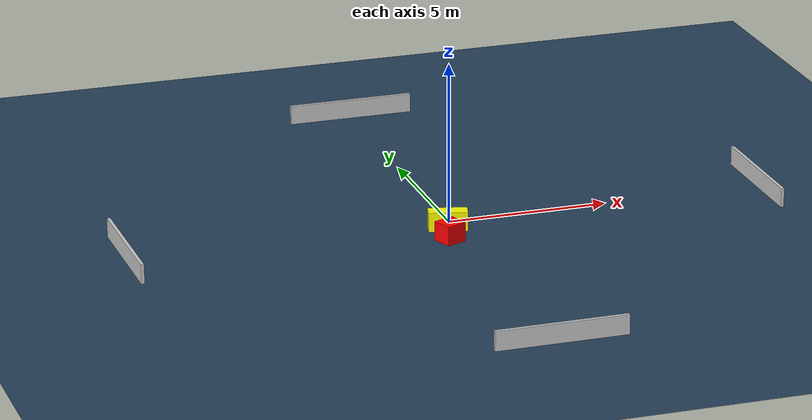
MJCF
<?xml version="1.0" ?>
<mujoco model="generated_environment">
  <option timestep="0.01" integrator="RK4" cone="elliptic"/>
  <default>
    <geom density="1"/>
  </default>
  <asset>
    <texture builtin="gradient" height="3072" name="skybox" rgb1="0.3 0.5 0.7" rgb2="0 0 0" type="skybox" width="512"/>
    <texture builtin="checker" height="300" name="groundplane" rgb1="0.2 0.3 0.4" rgb2="0.1 0.2 0.3" type="2d" width="300"/>
    <material name="groundplane" reflectance="0.2" texrepeat="5 5" texture="groundplane"/>
  </asset>
  <worldbody>
    <light dir="0 0 -1" directional="true" pos="0 0 1.5"/>
    <geom condim="3" friction="0.5 0.005 0.001" material="groundplane" name="floor" pos="0 0 0" size="0 0 0.05" type="plane"/>
    <body name="walls">
      <geom name="wall_1" condim="4" pos="-10.0 0.0 0.3" rgba="0.800000011920929 0.800000011920929 0.800000011920929 1.0" size="0.05 2.0 0.3" type="box"/>
      <geom name="wall_2" condim="4" pos="10.0 0.0 0.3" rgba="0.800000011920929 0.800000011920929 0.800000011920929 1.0" size="0.05 2.0 0.3" type="box"/>
      <geom name="wall_3" condim="4" pos="0.0 -10.0 0.3" rgba="0.800000011920929 0.800000011920929 0.800000011920929 1.0" size="2.0 0.05 0.3" type="box"/>
      <geom name="wall_4" condim="4" pos="0.0 10.0 0.3" rgba="0.800000011920929 0.800000011920929 0.800000011920929 1.0" size="2.0 0.05 0.3" type="box"/>
    </body>
    <body name="robot">
      <joint name="joint_x" type="slide" pos="0 0 0" axis="1 0 0"/>
      <joint name="joint_y" type="slide" pos="0 0 0" axis="0 1 0"/>
      <geom name="robot" type="cylinder" pos="0.0 0.0 0.2" size="0.2 0.2 0.0" mass="5.0" friction="1.0 0.005 0.0001" condim="4" rgba="1.0 1.0 0.0 1.0"/>
    </body>
    <body name="obstacle_1_movable">
      <geom name="obstacle_1_movable" condim="4" pos="-0.22148850583654545 -0.5648224174317779 0.3" euler="0 0 166.13402193002412" friction="0.0 0.005 0.001" rgba="1.0 1.0 0.0 1.0" size="0.594859307705477 0.22705753879860274 0.3" type="box" mass="0.1"/>
      <joint type="free"/>
    </body>
    <body name="obstacle_2_static">
      <geom name="obstacle_2_static" condim="4" pos="-0.4614215659799442 -1.5094637718265398 0.3" euler="0 0 291.86405095089094" friction="0.0 0.005 0.001" rgba="1.0 0.0 0.0 1.0" size="0.3198823937815979 0.33501027175881154 0.3" type="box"/>
    </body>
  </worldbody>
  <actuator>
    <motor name="actuator_x" joint="joint_x" gear="1" ctrlrange="-1 1"/>
    <motor name="actuator_y" joint="joint_y" gear="1" ctrlrange="-1 1"/>
  </actuator>
</mujoco>
